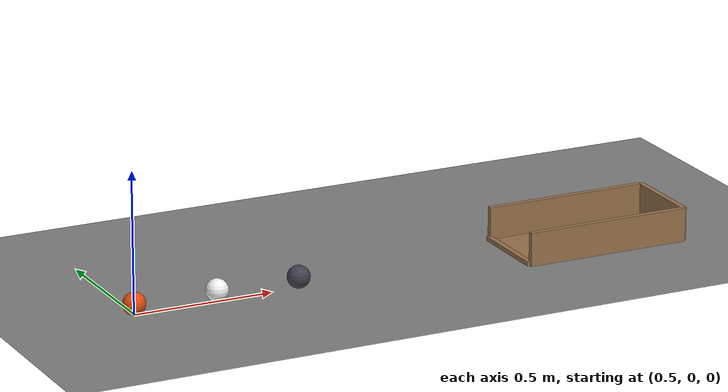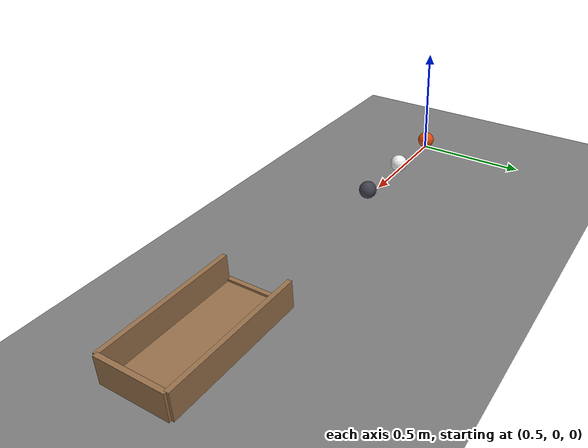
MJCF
<mujoco model="three_balls_in_a_row_into_a_cup">
  <compiler angle="radian"/>
  <option timestep="0.002"/>
  <worldbody>
    <geom name="floor" type="plane" size="6 6 0.1" friction="0.8 0.005 0.002"/>
    <body name="ball1" pos="0.5 0 0.04">
      <freejoint/>
      <geom name="ball1" type="sphere" pos="0 0 0" size="0.04" mass="0.15" condim="6" friction="0.05 0.005 0.002" solref="0.01 0.2" rgba="0.9 0.3 0.05 1"/>
    </body>
    <body name="ball2" pos="0.8 0 0.04">
      <freejoint/>
      <geom name="ball2" type="sphere" pos="0 0 0" size="0.04" mass="0.15" condim="6" friction="0.05 0.005 0.002" solref="0.01 0.2" rgba="0.95 0.95 0.95 1"/>
    </body>
    <body name="ball3" pos="1.1 0 0.04">
      <freejoint/>
      <geom name="ball3" type="sphere" pos="0 0 0" size="0.04" mass="0.15" condim="6" friction="0.05 0.005 0.002" solref="0.01 0.2" rgba="0.25 0.25 0.3 1"/>
    </body>
    <body name="cup">
      <geom name="cup_base" type="box" pos="2.2 0 0.0025" size="0.3 0.15 0.0025" friction="0.8 0.02 0.01" solref="0.01 1" rgba="0.6 0.45 0.3 1"/>
      <geom name="cup_near_wall" type="box" pos="1.9 0 0.0075" size="0.01 0.15 0.0075" friction="0.8 0.02 0.01" solref="0.01 1" rgba="0.6 0.45 0.3 1"/>
      <geom name="cup_far_wall" type="box" pos="2.5 0 0.06" size="0.01 0.15 0.06" friction="0.8 0.02 0.01" solref="0.01 1" rgba="0.6 0.45 0.3 1"/>
      <geom name="cup_left_wall" type="box" pos="2.2 0.15 0.06" size="0.3 0.01 0.06" friction="0.8 0.02 0.01" solref="0.01 1" rgba="0.6 0.45 0.3 1"/>
      <geom name="cup_right_wall" type="box" pos="2.2 -0.15 0.06" size="0.3 0.01 0.06" friction="0.8 0.02 0.01" solref="0.01 1" rgba="0.6 0.45 0.3 1"/>
    </body>
  </worldbody>
  <keyframe>
    <key name="start" qpos="0.5 0 0.04 1 0 0 0 0.8 0 0.04 1 0 0 0 1.1 0 0.04 1 0 0 0" qvel="4 0 0 0 100 0 0 0 0 0 0 0 0 0 0 0 0 0"/>
  </keyframe>
</mujoco>
